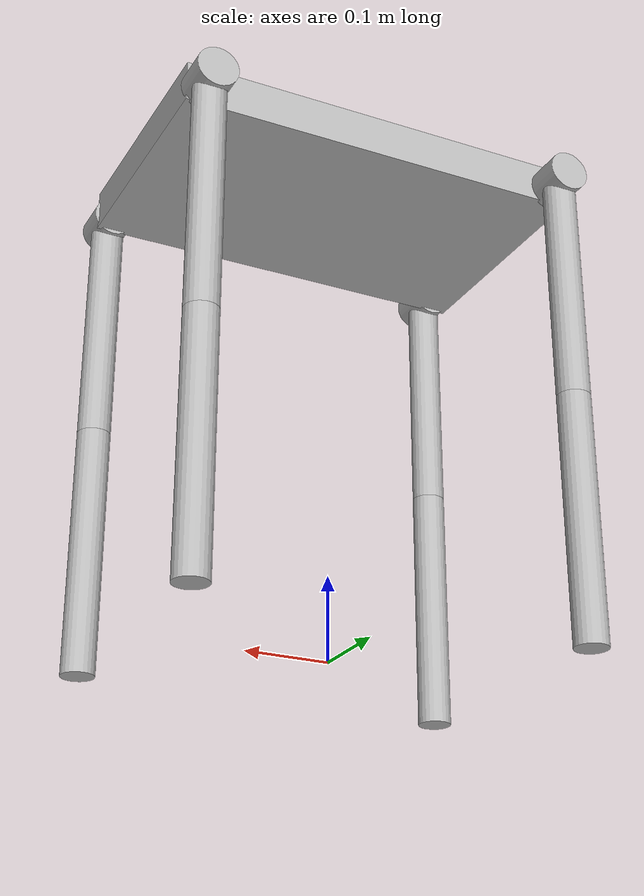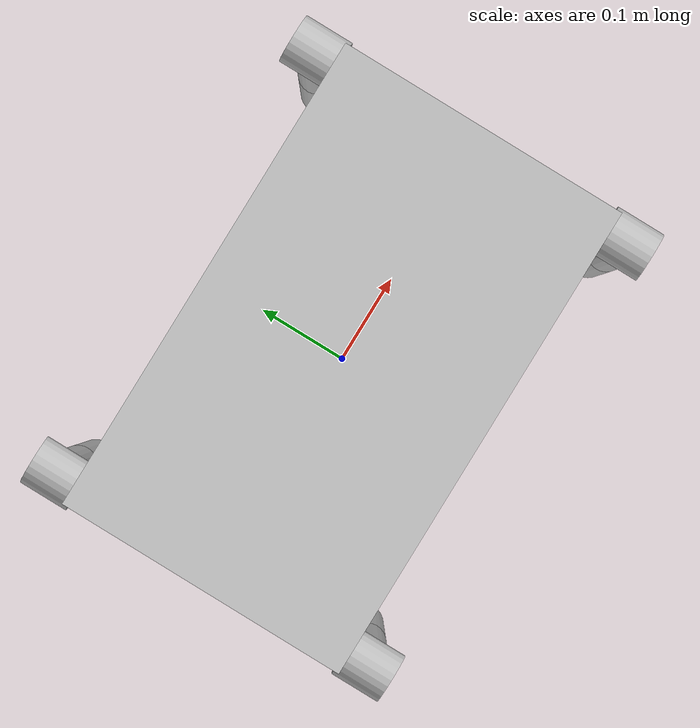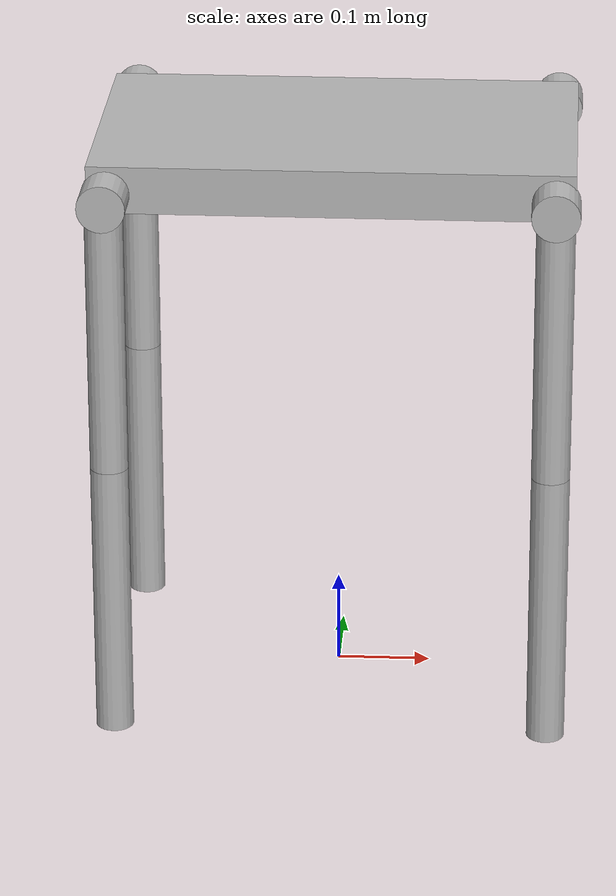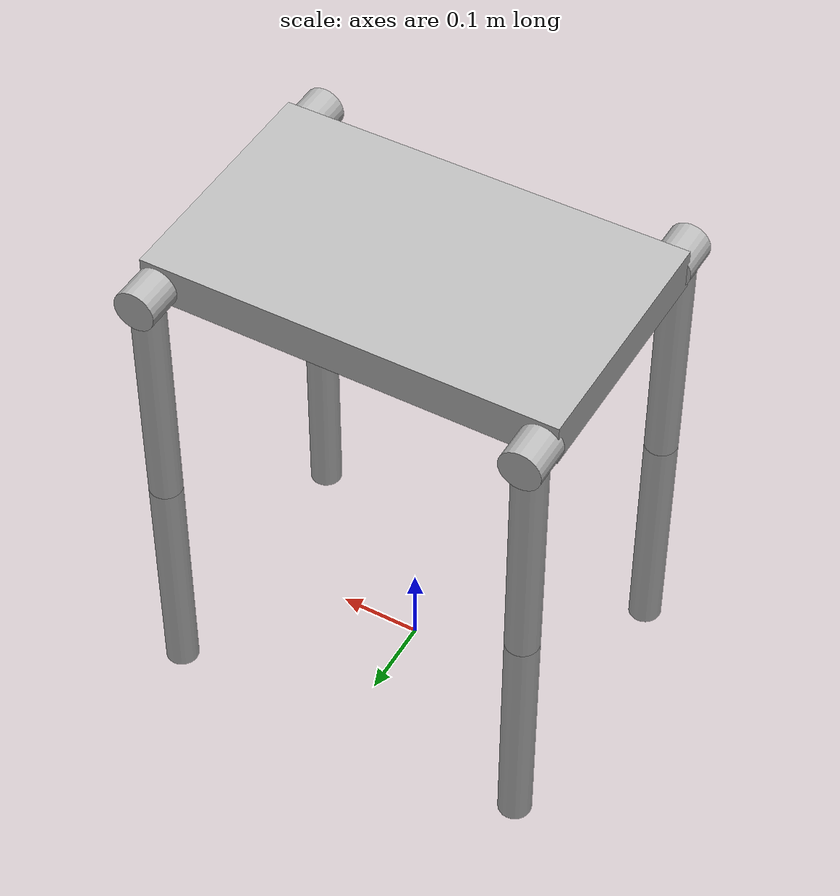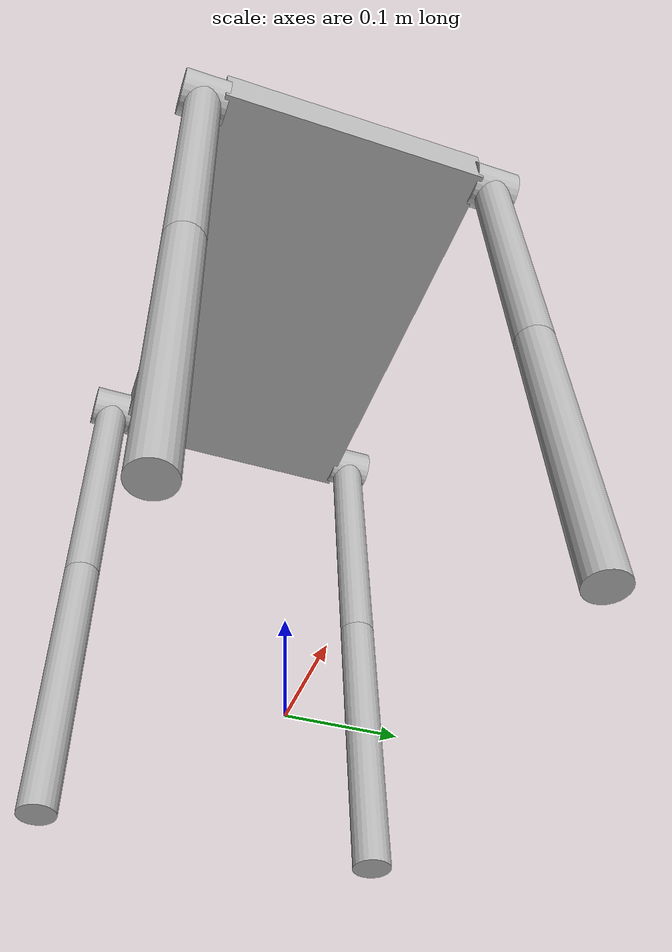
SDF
<?xml version='1.0'?>
<sdf version='1.4'>

<!-- 脚ロボット -->
<model name="legged_robot">
  <static>false</static> <!-- trueにすると静的モデル -->

  <!-- 胴体 -->
  <link name="torso">
    <pose>0 0 0.6 0 0 0</pose>
    <inertial>
    <mass>10</mass>
    <inertia>
      <ixx>0.07</ixx>
      <iyy>0.08</iyy>
      <izz>0.10</izz>
      <ixy>0</ixy>
      <ixz>0</ixz>
      <iyz>0</iyz>
    </inertia>
    </inertial>
    <collision name='collision'>
      <geometry>
	<box>
	  <size>0.5 0.3 0.05</size>
	</box>
      </geometry>
    </collision>
    <visual name='visual'>
      <geometry>
	<box>
	  <size>0.5 0.3 0.05</size>
	</box>
      </geometry>
    </visual>
  </link>

  <!-- リンク：左前脚土台　-->
  <link name='base_left_fore'>
  <pose>0.23 0.17 0.595 1.5707 0  0 </pose> <!-- 位置(x,y,z)と姿勢(roll,pitch,yaw) -->
  <visual name='visual'> <!-- 表示用 -->
    <geometry> <!-- 形状情報 -->
      <cylinder> <!-- 円柱　-->
	<radius>0.025</radius> <!-- 半径 -->
	<length>0.05</length>  <!-- 長さ -->
      </cylinder>
    </geometry>
  </visual>
  </link>

　<!-- リンク：左後脚土台　-->
  <link name='base_left_rear'>
  <pose>-0.23 0.17 0.595  1.5707 0  0 </pose> <!-- 位置(x,y,z)と姿勢(roll,pitch,yaw) -->
  <visual name='visual'> <!-- 表示用 -->
    <geometry> <!-- 形状情報 -->
      <cylinder> <!-- 円柱　-->
	<radius>0.025</radius> <!-- 半径 -->
	<length>0.05</length>  <!-- 長さ -->
      </cylinder>
    </geometry>
  </visual>
  </link>

　<!-- リンク：右前脚土台　-->
  <link name='base_right_fore'>
  <pose>0.23 -0.17 0.595 1.5707 0  0 </pose> <!-- 位置(x,y,z)と姿勢(roll,pitch,yaw) -->
  <visual name='visual'> <!-- 表示用 -->
    <geometry> <!-- 形状情報 -->
      <cylinder> <!-- 円柱　-->
	<radius>0.025</radius> <!-- 半径 -->
	<length>0.05</length>  <!-- 長さ -->
      </cylinder>
    </geometry>
  </visual>
  </link>

  <!-- リンク：右後脚土台　-->
  <link name='base_right_rear'>
    <pose>-0.23 -0.17 0.595 1.5707 0  0 </pose>
    <visual name='visual'> <!-- 表示用 -->
      <geometry> <!-- 形状情報 -->
	<cylinder> <!-- 円柱　-->
	  <radius>0.025</radius> <!-- 半径 -->
	  <length>0.05</length>  <!-- 長さ -->
	</cylinder>
      </geometry>
    </visual>
  </link>

　<!-- 左前下脚　-->
  <link name='link_left_fore_lower'>
    <self_collide>0</self_collide>
    <pose>0.23 0.17 0.15 0 0 0</pose>
    <inertial>
      <inertia>
	<ixx>0.01</ixx>
	<ixy>0</ixy>
	<ixz>0</ixz>
	<iyy>0.01</iyy>
	<iyz>0</iyz>
	<izz>0.01</izz>
      </inertia>
      <mass>2.0</mass>
    </inertial>
    <collision name='collision'>
      <geometry>
	<cylinder>
	  <radius>0.02</radius> <!-- 半径 -->
	  <length>0.3</length>  <!-- 長さ -->
	</cylinder>
      </geometry>
      <surface>
          <friction>
            <ode>
              <mu>100000.0</mu>
	      <mu2>100000.0</mu2>
              <slip1>0.0</slip1>
              <slip2>0.0</slip2>
            </ode>
          </friction>
      </surface>
    </collision>
    <visual name='visual'> <!-- 表示用 -->
      <geometry> <!-- 形状情報 -->
	<cylinder>
	  <radius>0.02</radius> <!-- 半径 -->
	  <length>0.3</length>  <!-- 長さ -->
	</cylinder>
      </geometry>
    </visual>
  </link>

　<!-- 左後下脚　-->
  <link name='link_left_rear_lower'>
    <self_collide>0</self_collide>
    <pose>-0.23 0.17 0.15 0 0 0</pose>
    <inertial>
      <inertia>
	<ixx>0.01</ixx>
	<ixy>0</ixy>
	<ixz>0</ixz>
	<iyy>0.01</iyy>
	<iyz>0</iyz>
	<izz>0.01</izz>
      </inertia>
      <mass>2.0</mass>
    </inertial>
    <collision name='collision'>
      <geometry>
	<cylinder>
	  <radius>0.02</radius> <!-- 半径 -->
	  <length>0.3</length>  <!-- 長さ -->
	</cylinder>
      </geometry>
      <surface>
          <friction>
            <ode>
              <mu>100000.0</mu>
              <mu2>100000.0</mu2>
              <slip1>0.0</slip1>
              <slip2>0.0</slip2>
            </ode>
          </friction>
      </surface>
    </collision>
    <visual name='visual'> <!-- 表示用 -->
      <geometry> <!-- 形状情報 -->
	<cylinder>
	  <radius>0.02</radius> <!-- 半径 -->
	  <length>0.3</length>  <!-- 長さ -->
	</cylinder>
      </geometry>
    </visual>
  </link>

　<!-- 右前下脚　-->
  <link name='link_right_fore_lower'>
  <self_collide>0</self_collide>
   <pose>0.23 -0.17 0.15 0 0 0</pose>
   <inertial>
     <inertia>
       <ixx>0.01</ixx>
       <ixy>0</ixy>
       <ixz>0</ixz>
       <iyy>0.01</iyy>
       <iyz>0</iyz>
       <izz>0.01</izz>
     </inertia>
     <mass>2.0</mass>
   </inertial>
   <collision name='collision'>
     <geometry>
       <cylinder>
	 <radius>0.02</radius> <!-- 半径 -->
	 <length>0.3</length>  <!-- 長さ -->
       </cylinder>
     </geometry>
     <surface>
          <friction>
            <ode>
              <mu>100000.0</mu>
              <mu2>100000.0</mu2>
              <slip1>0.0</slip1>
              <slip2>0.0</slip2>
            </ode>
          </friction>
     </surface>
   </collision>
   <visual name='visual'> <!-- 表示用 -->
     <geometry> <!-- 形状情報 -->
       <cylinder>
	 <radius>0.02</radius> <!-- 半径 -->
	 <length>0.3</length>  <!-- 長さ -->
       </cylinder>
     </geometry>
   </visual>
  </link>

　<!-- 右後下脚　-->
  <link name='link_right_rear_lower'>　<!-- 右後下脚　-->
  <self_collide>0</self_collide>
  <pose>-0.23 -0.17 0.15 0 0 0</pose>
  <inertial>
    <inertia>
      <ixx>0.01</ixx>
      <ixy>0</ixy>
      <ixz>0</ixz>
      <iyy>0.01</iyy>
      <iyz>0</iyz>
      <izz>0.01</izz>
    </inertia>
    <mass>2.0</mass>
  </inertial>
  <collision name='collision'>
    <geometry>
      <cylinder>
	<radius>0.02</radius> <!-- 半径 -->
	<length>0.3</length>  <!-- 長さ -->
      </cylinder>
    </geometry>
    <surface>
          <friction>
            <ode>
              <mu>100000.0</mu>
              <mu2>100000.0</mu2>
              <slip1>0.0</slip1>
              <slip2>0.0</slip2>
            </ode>
          </friction>
    </surface>
  </collision>
  <visual name='visual'> <!-- 表示用 -->
    <geometry> <!-- 形状情報 -->
      <cylinder>
	<radius>0.02</radius> <!-- 半径 -->
	<length>0.3</length>  <!-- 長さ -->
      </cylinder>
    </geometry>
  </visual>
  </link>

　<!-- 左前上脚　-->
  <link name='link_left_fore_upper'>
  <self_collide>0</self_collide>
  <pose>0.23 0.17 0.45 0 0 0</pose>
  <inertial>
    <inertia>
      <ixx>0.01</ixx>
      <ixy>0</ixy>
      <ixz>0</ixz>
      <iyy>0.01</iyy>
      <iyz>0</iyz>
      <izz>0.01</izz>
    </inertia>
    <mass>2.0</mass>
  </inertial>
  <visual name='visual'> <!-- 表示用 -->
    <geometry> <!-- 形状情報 -->
      <cylinder> <!-- カプセル　-->
	<radius>0.02</radius> <!-- 半径 -->
	<length>0.3</length>  <!-- 長さ -->
      </cylinder>
    </geometry>
  </visual>
  </link>

　<!-- 左後上脚　-->
  <link name='link_left_rear_upper'>
  <self_collide>0</self_collide>
  <pose>-0.23 0.17 0.45 0 0 0</pose>
  <inertial>
    <inertia>
      <ixx>0.01</ixx>
      <ixy>0</ixy>
      <ixz>0</ixz>
      <iyy>0.01</iyy>
      <iyz>0</iyz>
      <izz>0.01</izz>
    </inertia>
    <mass>2.0</mass>
  </inertial>
  <visual name='visual'> <!-- 表示用 -->
    <geometry> <!-- 形状情報 -->
      <cylinder> <!-- カプセル　-->
	<radius>0.02</radius> <!-- 半径 -->
	<length>0.3</length>  <!-- 長さ -->
      </cylinder>
    </geometry>
  </visual>
  </link>

  <!-- 右前上脚　-->
  <link name='link_right_fore_upper'>　
  <self_collide>0</self_collide>
  <pose>0.23 -0.17 0.45 0 0 0</pose>
  <inertial>
    <inertia>
     <ixx>0.01</ixx>
     <ixy>0</ixy>
     <ixz>0</ixz>
     <iyy>0.01</iyy>
     <iyz>0</iyz>
     <izz>0.01</izz>
   </inertia>
   <mass>2.0</mass>
  </inertial>
  <visual name='visual'> <!-- 表示用 -->
    <geometry> <!-- 形状情報 -->
      <cylinder> <!-- カプセル　-->
	<radius>0.02</radius> <!-- 半径 -->
	<length>0.3</length>  <!-- 長さ -->
      </cylinder>
    </geometry>
  </visual>
  </link>

　<!-- 右後上脚　-->
  <link name='link_right_rear_upper'>
  <self_collide>0</self_collide>
  <pose>-0.23 -0.17 0.45 0 0 0</pose>
  <inertial>
    <inertia>
      <ixx>0.01</ixx>
      <ixy>0</ixy>
      <ixz>0</ixz>
      <iyy>0.01</iyy>
      <iyz>0</iyz>
      <izz>0.01</izz>
    </inertia>
    <mass>2.0</mass>
  </inertial>
  <visual name='visual'> <!-- 表示用 -->
    <geometry> <!-- 形状情報 -->
      <cylinder>
	<radius>0.02</radius> <!-- 半径 -->
	<length>0.3</length>  <!-- 長さ -->
      </cylinder>
    </geometry>
  </visual>
  </link>

  <!-- ジョイント(関節)　revoluteは回転式(ヒンジ）-->
  <!--左前第１関節 -->
  <joint type="revolute" name="hinge_lf1">
    <pose>0 0 0 0 0 0</pose>
    <child>base_left_fore</child> <!-- 子(下位)リンク -->
    <parent>torso</parent>  <!-- 親(上位)リンク -->
    <axis>
      <xyz>0 1 0</xyz> <!-- 回転軸ベクトル(x,y,z)　-->
    </axis>
  </joint>

  <!--左後第１関節 -->
  <joint type="revolute" name="hinge_lr1">
    <pose>0 0 0 0 0 0</pose>
    <child>base_left_rear</child> <!-- 子(下位)リンク -->
    <parent>torso</parent>  <!-- 親(上位)リンク -->
    <axis>
      <xyz>0 1 0</xyz> <!-- 回転軸ベクトル(x,y,z)　-->
    </axis>
  </joint>

  <!--右前第１関節 -->
  <joint type="revolute" name="hinge_rf1">
    <pose>0 0 0 0 0 0</pose>
    <child> base_right_fore</child> <!-- 子(下位)リンク -->
    <parent>torso</parent>  <!-- 親(上位)リンク -->
    <axis>
      <xyz>0 1 0</xyz> <!-- 回転軸ベクトル(x,y,z)　-->
    </axis>
  </joint>

  <!--右後第１関節 -->
  <joint type="revolute" name="hinge_rr1">
    <pose>0 0 0 0 0 0</pose>
    <child> base_right_rear</child> <!-- 子(下位)リンク -->
    <parent>torso</parent>  <!-- 親(上位)リンク -->
    <axis>
      <xyz>0 1 0</xyz> <!-- 回転軸ベクトル(x,y,z)　-->
    </axis>
  </joint>

  <!--左前第2関節 -->
  <joint type="revolute" name="hinge_lf2">
    <pose>0 0 0.15 0 0 0</pose>
    <child> link_left_fore_upper</child> <!-- 子(下位)リンク -->
    <parent>base_left_fore</parent>  <!-- 親(上位)リンク -->
    <axis>
      <xyz>1 0 0 </xyz> <!-- 回転軸ベクトル(x,y,z)　-->
    </axis>
  </joint>

  <joint type="revolute" name="hinge_lr2"> <!--左後第2関節 -->
    <pose>0 0 0.15 0 0 0</pose>
    <child> link_left_rear_upper</child> <!-- 子(下位)リンク -->
    <parent>base_left_rear</parent>  <!-- 親(上位)リンク -->
    <axis>
      <xyz>1 0 0</xyz> <!-- 回転軸ベクトル(x,y,z)　-->
    </axis>
  </joint>

  <!--右前第2関節 -->
  <joint type="revolute" name="hinge_rf2">
    <pose>0 0 0.15 0 0 0</pose>
    <child> link_right_fore_upper</child> <!-- 子(下位)リンク -->
    <parent>base_right_fore</parent>  <!-- 親(上位)リンク -->
    <axis>
      <xyz>1 0 0</xyz> <!-- 回転軸ベクトル(x,y,z)　-->
    </axis>
  </joint>

  <!--右後第2関節 -->
  <joint type="revolute" name="hinge_rr2">
    <pose>0 0 0.15 0 0 0</pose>
    <child> link_right_rear_upper</child> <!-- 子(下位)リンク -->
    <parent>base_right_rear</parent>  <!-- 親(上位)リンク -->
    <axis>
      <xyz>1 0 0</xyz> <!-- 回転軸ベクトル(x,y,z)　-->
    </axis>
  </joint>

  <!--左前第3関節 -->
  <joint type="revolute" name="hinge_lf3">
    <pose>0 0 0.15 0 0 0</pose>
    <child> link_left_fore_lower</child> <!-- 子(下位)リンク -->
    <parent>link_left_fore_upper</parent>  <!-- 親(上位)リンク -->
    <axis>
      <xyz>0 1 0</xyz> <!-- 回転軸ベクトル(x,y,z)　-->
    </axis>
  </joint>

  <!--左後第3関節 -->
  <joint type="revolute" name="hinge_lr3">
    <pose>0 0 0.15 0 0 0</pose>
    <child> link_left_rear_lower</child> <!-- 子(下位)リンク -->
    <parent>link_left_rear_upper</parent>  <!-- 親(上位)リンク -->
    <axis>
      <xyz>0 1 0</xyz> <!-- 回転軸ベクトル(x,y,z)　-->
    </axis>
  </joint>

  <!--右前第3関節 -->
  <joint type="revolute" name="hinge_rf3">
    <pose>0 0 0.15 0 0 0</pose>
    <child> link_right_fore_lower</child> <!-- 子(下位)リンク -->
    <parent>link_right_fore_upper</parent>  <!-- 親(上位)リンク -->
    <axis>
      <xyz>0 1 0</xyz> <!-- 回転軸ベクトル(x,y,z)　-->
    </axis>
  </joint>

  <!--右後第3関節 -->
  <joint type="revolute" name="hinge_rr3">
    <pose>0 0 0.15 0 0 0</pose>
    <child> link_right_rear_lower</child> <!-- 子(下位)リンク -->
    <parent>link_right_rear_upper</parent>  <!-- 親(上位)リンク -->
    <axis>
     <xyz>0 1 0</xyz> <!-- 回転軸ベクトル(x,y,z)　-->
    </axis>
  </joint>

  <plugin name="gazebo_legged_robot_walking_plugin" filename="libgazebo_legged_robot_walking_plugin.so" >
    <hinge_lf1>hinge_lf1</hinge_lf1>
    <hinge_lf2>hinge_lf2</hinge_lf2>
    <hinge_lf3>hinge_lf3</hinge_lf3>
    <hinge_lr1>hinge_lr1</hinge_lr1>
    <hinge_lr2>hinge_lr2</hinge_lr2>
    <hinge_lr3>hinge_lr3</hinge_lr3>
    <hinge_rf1>hinge_rf1</hinge_rf1>
    <hinge_rf2>hinge_rf2</hinge_rf2>
    <hinge_rf3>hinge_rf3</hinge_rf3>
    <hinge_rr1>hinge_rr1</hinge_rr1>
    <hinge_rr2>hinge_rr2</hinge_rr2>
    <hinge_rr3>hinge_rr3</hinge_rr3>
    <gain>0.1 </gain>
    <sensor>sensor</sensor>
    <ray_sensor>laser</ray_sensor>
  </plugin>
</model>
</sdf>
